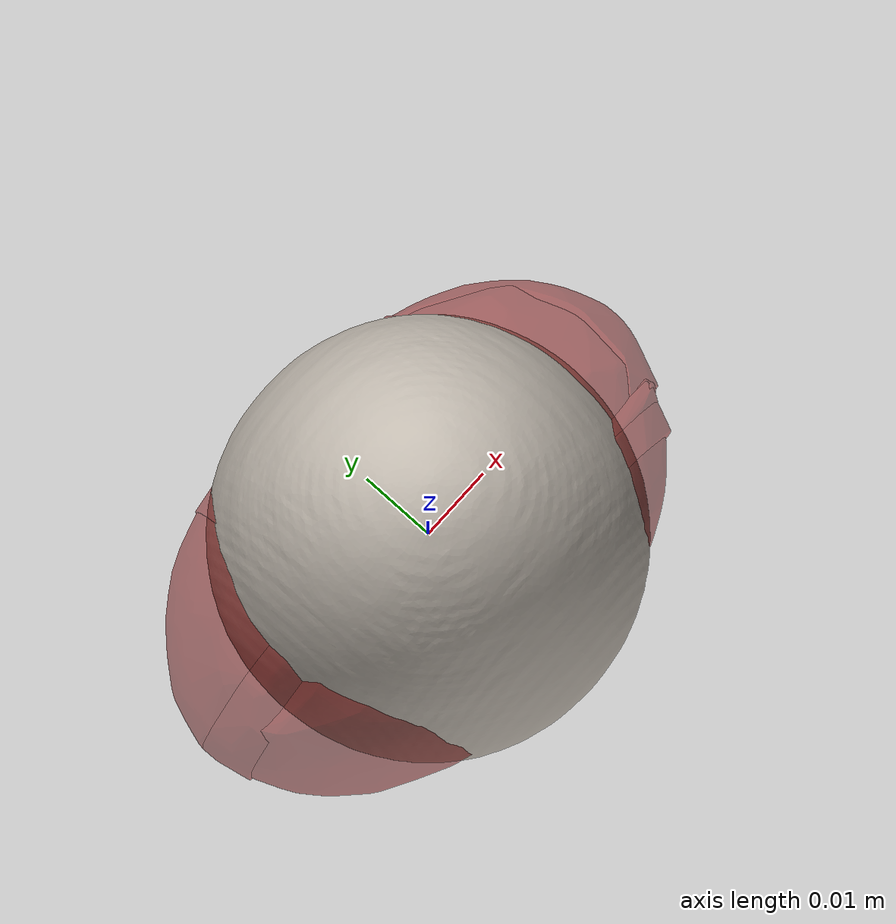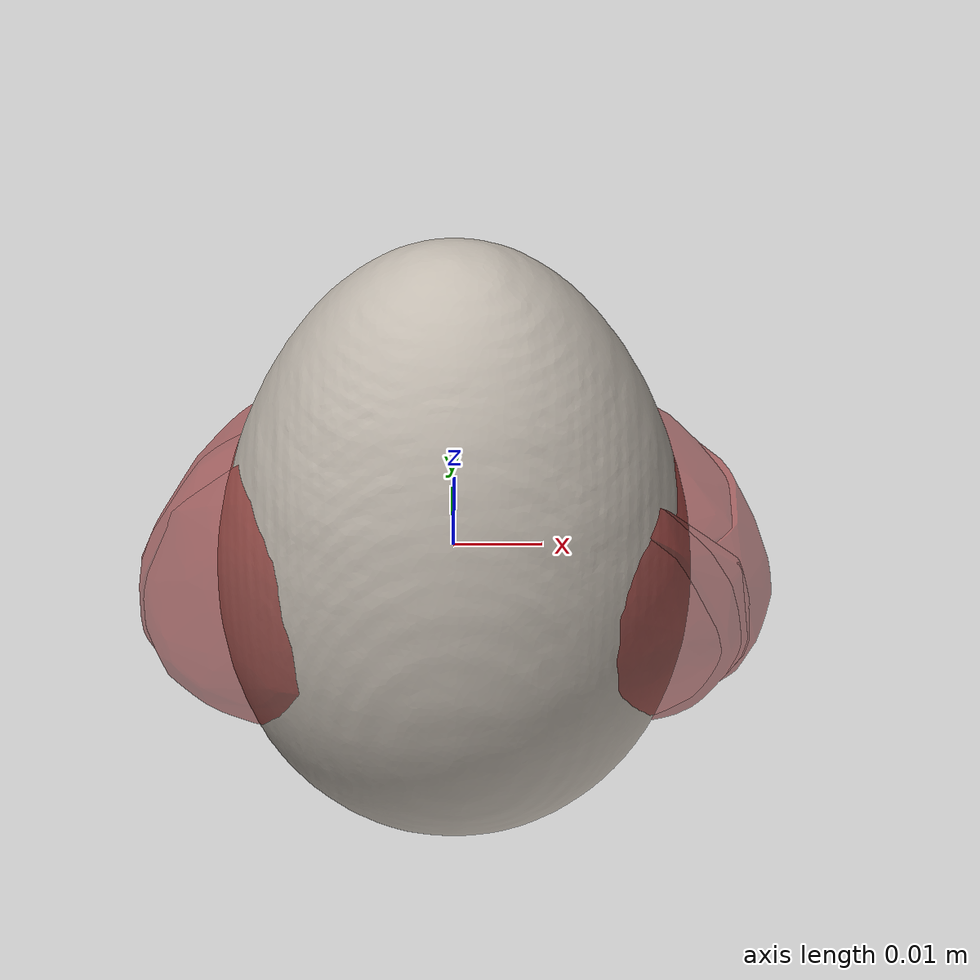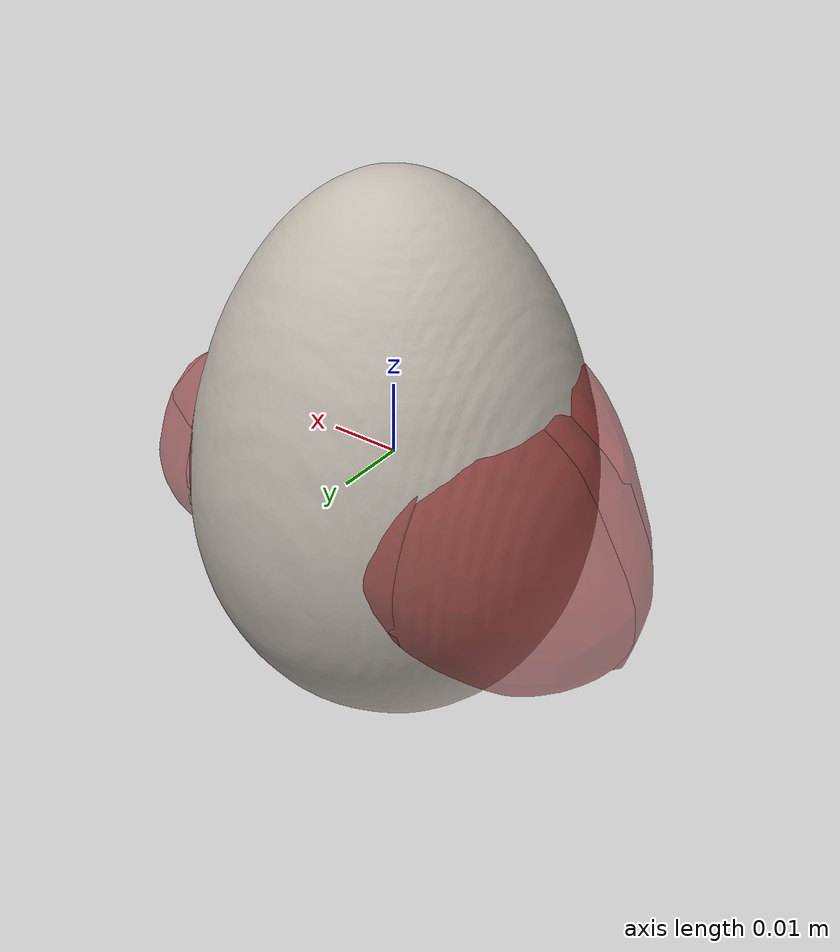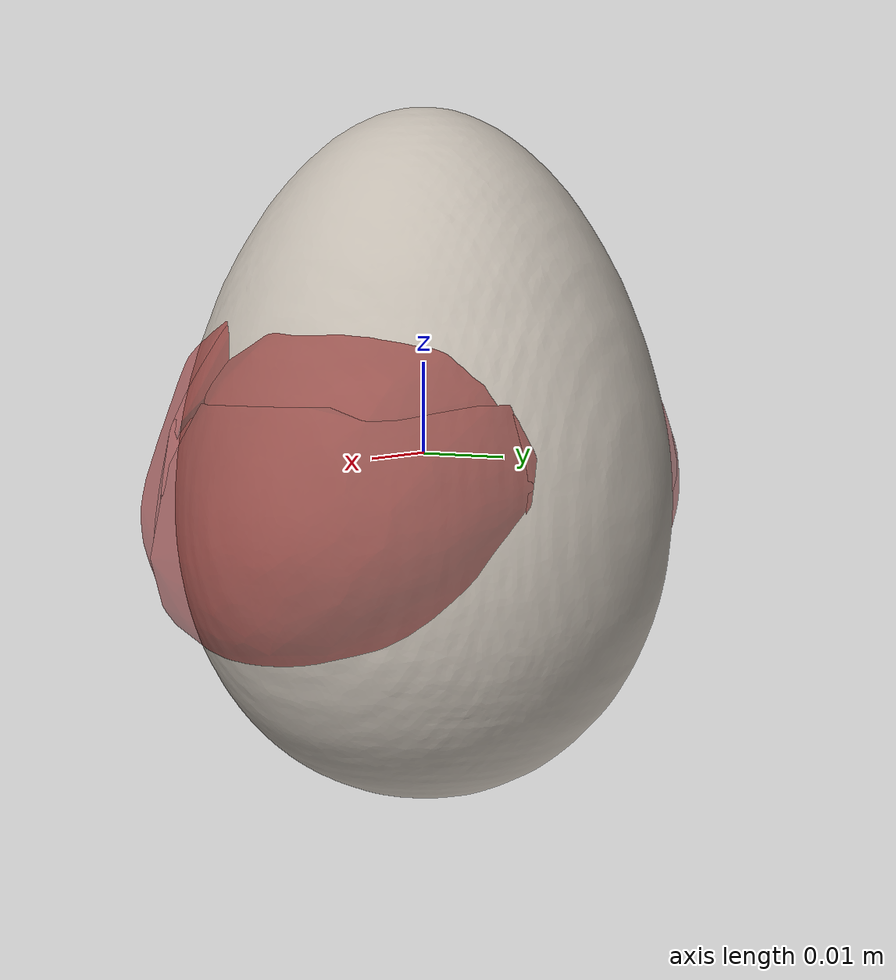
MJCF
<mujoco model="apple_41">
  <asset>
    <mesh file="visual/model_normalized_0.obj" name="model_normalized_0_vis" scale="0.07500000000000001 0.07500000000000001 0.07500000000000001" refquat="1.0 0.0 0.0 0.0"/>
    <texture type="2d" name="image0" file="visual/image0.png"/>
    <material name="defaultMat.011" texture="image0" specular="0.25" shininess="0.18"/>
    <mesh file="collision/collision_mesh_collision_0.obj" name="apple_collision_mesh_0" scale="0.07500000000000001 0.07500000000000001 0.07500000000000001" refquat="1.0 0.0 0.0 0.0"/>
    <mesh file="collision/collision_mesh_collision_1.obj" name="apple_collision_mesh_1" scale="0.07500000000000001 0.07500000000000001 0.07500000000000001" refquat="1.0 0.0 0.0 0.0"/>
    <mesh file="collision/collision_mesh_collision_2.obj" name="apple_collision_mesh_2" scale="0.07500000000000001 0.07500000000000001 0.07500000000000001" refquat="1.0 0.0 0.0 0.0"/>
    <mesh file="collision/collision_mesh_collision_3.obj" name="apple_collision_mesh_3" scale="0.07500000000000001 0.07500000000000001 0.07500000000000001" refquat="1.0 0.0 0.0 0.0"/>
    <mesh file="collision/collision_mesh_collision_4.obj" name="apple_collision_mesh_4" scale="0.07500000000000001 0.07500000000000001 0.07500000000000001" refquat="1.0 0.0 0.0 0.0"/>
    <mesh file="collision/collision_mesh_collision_5.obj" name="apple_collision_mesh_5" scale="0.07500000000000001 0.07500000000000001 0.07500000000000001" refquat="1.0 0.0 0.0 0.0"/>
    <mesh file="collision/collision_mesh_collision_6.obj" name="apple_collision_mesh_6" scale="0.07500000000000001 0.07500000000000001 0.07500000000000001" refquat="1.0 0.0 0.0 0.0"/>
    <mesh file="collision/collision_mesh_collision_7.obj" name="apple_collision_mesh_7" scale="0.07500000000000001 0.07500000000000001 0.07500000000000001" refquat="1.0 0.0 0.0 0.0"/>
    <mesh file="collision/collision_mesh_collision_8.obj" name="apple_collision_mesh_8" scale="0.07500000000000001 0.07500000000000001 0.07500000000000001" refquat="1.0 0.0 0.0 0.0"/>
    <mesh file="collision/collision_mesh_collision_9.obj" name="apple_collision_mesh_9" scale="0.07500000000000001 0.07500000000000001 0.07500000000000001" refquat="1.0 0.0 0.0 0.0"/>
    <mesh file="collision/collision_mesh_collision_10.obj" name="apple_collision_mesh_10" scale="0.07500000000000001 0.07500000000000001 0.07500000000000001" refquat="1.0 0.0 0.0 0.0"/>
    <mesh file="collision/collision_mesh_collision_11.obj" name="apple_collision_mesh_11" scale="0.07500000000000001 0.07500000000000001 0.07500000000000001" refquat="1.0 0.0 0.0 0.0"/>
    <mesh file="collision/collision_mesh_collision_12.obj" name="apple_collision_mesh_12" scale="0.07500000000000001 0.07500000000000001 0.07500000000000001" refquat="1.0 0.0 0.0 0.0"/>
    <mesh file="collision/collision_mesh_collision_13.obj" name="apple_collision_mesh_13" scale="0.07500000000000001 0.07500000000000001 0.07500000000000001" refquat="1.0 0.0 0.0 0.0"/>
    <mesh file="collision/collision_mesh_collision_14.obj" name="apple_collision_mesh_14" scale="0.07500000000000001 0.07500000000000001 0.07500000000000001" refquat="1.0 0.0 0.0 0.0"/>
    <mesh file="collision/collision_mesh_collision_15.obj" name="apple_collision_mesh_15" scale="0.07500000000000001 0.07500000000000001 0.07500000000000001" refquat="1.0 0.0 0.0 0.0"/>
  </asset>
  <custom><text name="material_gt" data="organic_tissue"/></custom>
  <default>
    <default class="region">
      <geom group="1" conaffinity="0" contype="0" rgba="0 1 0 0"/>
    </default>
    <default class="collision">
      <geom group="0" rgba="0.5 0 0 0.5" density="1000.0"/>
    </default>
  </default>
  <worldbody>
    <body>
      <body name="object">
        <geom solimp="0.998 0.998 0.001" solref="0.001 1" density="100" friction="0.95 0.3 0.1" type="mesh" mesh="model_normalized_0_vis" conaffinity="0" contype="0" group="1" material="defaultMat.011"/>
        <geom class="region" name="reg_bbox" type="box" pos="3.76424999999625e-06 6.589124999997754e-06 -2.1469125000000982e-05" size="0.037891334250000006 0.037709471625000004 0.037759434375000005"/>
        <geom mesh="apple_collision_mesh_0" type="mesh" class="collision"/>
        <geom mesh="apple_collision_mesh_1" type="mesh" class="collision"/>
        <geom mesh="apple_collision_mesh_2" type="mesh" class="collision"/>
        <geom mesh="apple_collision_mesh_3" type="mesh" class="collision"/>
        <geom mesh="apple_collision_mesh_4" type="mesh" class="collision"/>
        <geom mesh="apple_collision_mesh_5" type="mesh" class="collision"/>
        <geom mesh="apple_collision_mesh_6" type="mesh" class="collision"/>
        <geom mesh="apple_collision_mesh_7" type="mesh" class="collision"/>
        <geom mesh="apple_collision_mesh_8" type="mesh" class="collision"/>
        <geom mesh="apple_collision_mesh_9" type="mesh" class="collision"/>
        <geom mesh="apple_collision_mesh_10" type="mesh" class="collision"/>
        <geom mesh="apple_collision_mesh_11" type="mesh" class="collision"/>
        <geom mesh="apple_collision_mesh_12" type="mesh" class="collision"/>
        <geom mesh="apple_collision_mesh_13" type="mesh" class="collision"/>
        <geom mesh="apple_collision_mesh_14" type="mesh" class="collision"/>
        <geom mesh="apple_collision_mesh_15" type="mesh" class="collision"/>
      </body>
    </body>
  </worldbody>
</mujoco>
